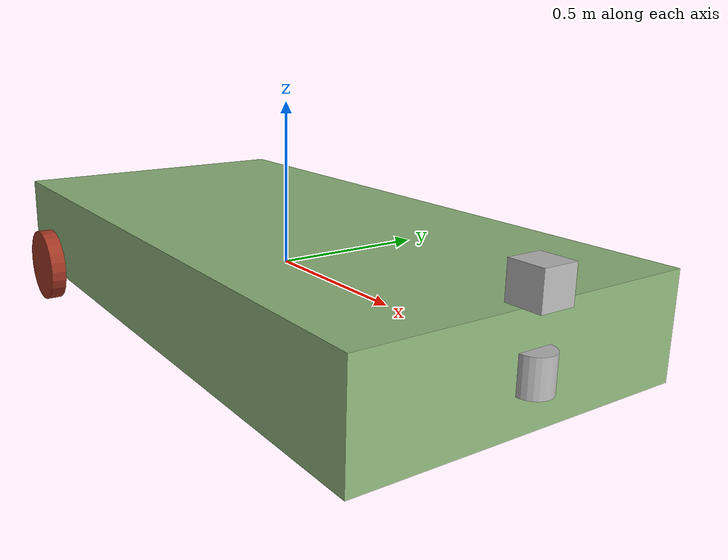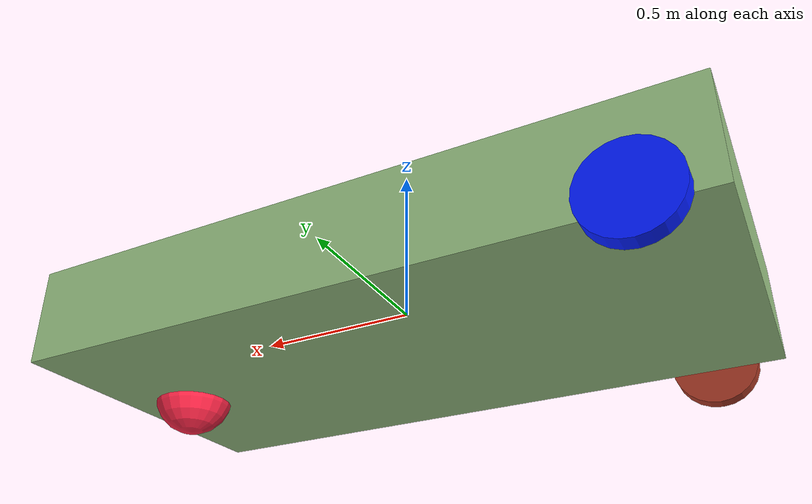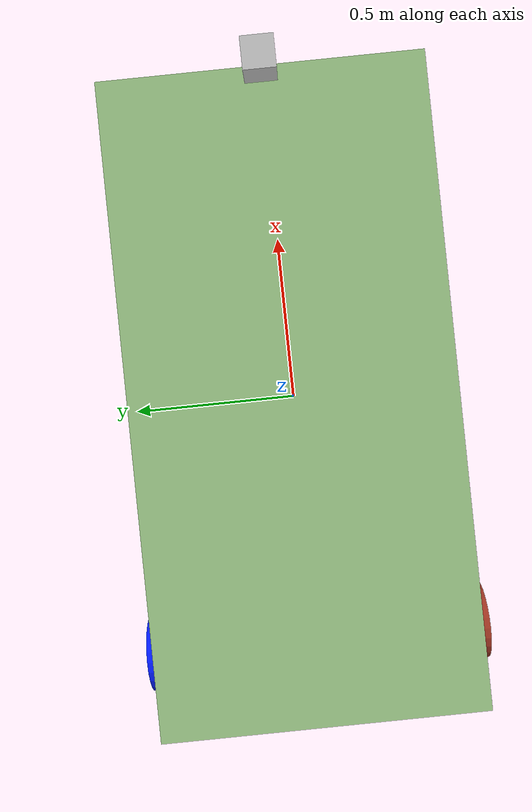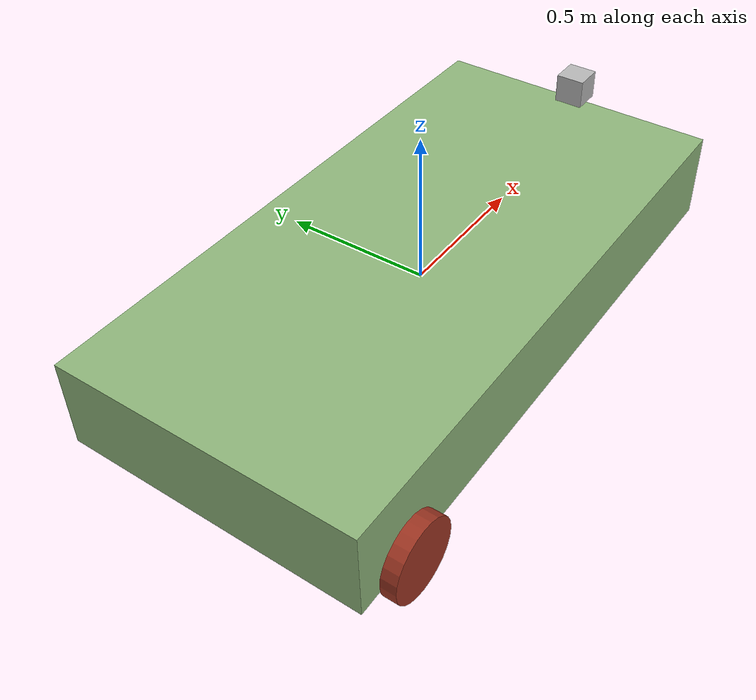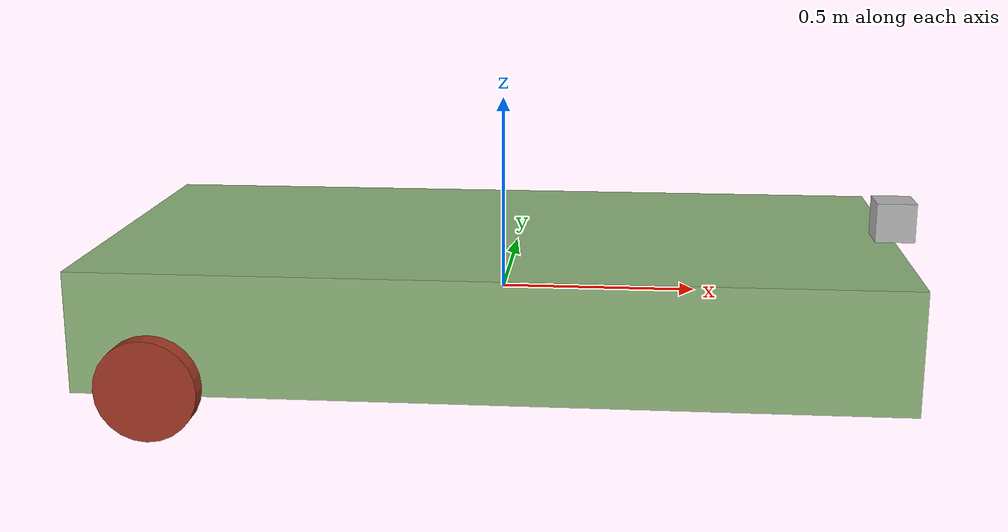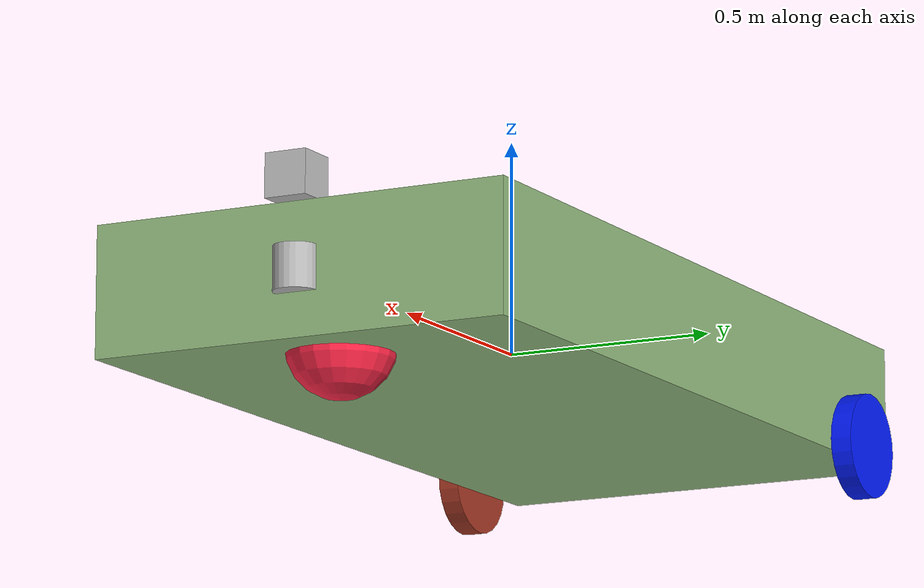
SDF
<?xml version="1.0" ?>
<sdf version="1.6">
  <model name="mobile_base">
    <pose frame="">0 0 0 0 -0 0</pose>
    <static>0</static>
    <self_collide>0</self_collide>
    <allow_auto_disable>0</allow_auto_disable>
    <link name="chassis">
      <kinematic>0</kinematic>
      <gravity>1</gravity>
      <self_collide>0</self_collide>
      <collision name="collision">
        <geometry>
          <box>
            <size>2 1 0.3</size>
          </box>
        </geometry>
        <pose frame="">0 0 0 0 -0 0</pose>
      </collision>
      <visual name="visual">
        <geometry>
          <box>
            <size>2 1 0.3</size>
          </box>
        </geometry>
        <material>
          <ambient>0.560784 0.713725 0.482353 1</ambient>
          <diffuse>0.5607843137254902 0.7137254901960784 0.4823529411764706 1</diffuse>
        </material>
        <pose frame="">0 0 0 0 -0 0</pose>
        <cast_shadows>1</cast_shadows>
        <transparency>0.0</transparency>
      </visual>
      <inertial>
        <inertia>
          <ixx>1.8166666666666667</ixx>
          <iyy>6.8166666666666655</iyy>
          <izz>8.333333333333332</izz>
          <ixy>0.0</ixy>
          <ixz>0.0</ixz>
          <iyz>0.0</iyz>
        </inertia>
        <pose frame="">0 0 0 0 -0 0</pose>
        <mass>20.0</mass>
      </inertial>
      <pose frame="">0 0 0 0 -0 0</pose>
    </link>
    <link name="caster_wheel">
      <kinematic>0</kinematic>
      <gravity>1</gravity>
      <self_collide>0</self_collide>
      <collision name="collision">
        <geometry>
          <sphere>
            <radius>0.125</radius>
          </sphere>
        </geometry>
        <pose frame="">0 0 0 0 -0 0</pose>
        <surface>
          <friction>
            <ode>
              <mu>0.0</mu>
              <mu2>0.0</mu2>
              <fdir1>0 0 0</fdir1>
              <slip1>0.0</slip1>
              <slip2>0.0</slip2>
            </ode>
            <bullet>
              <friction>0.0</friction>
              <friction2>0.0</friction2>
              <rolling_friction>1.0</rolling_friction>
              <fdir1>0 0 0</fdir1>
            </bullet>
          </friction>
        </surface>
      </collision>
      <visual name="visual">
        <geometry>
          <sphere>
            <radius>0.125</radius>
          </sphere>
        </geometry>
        <material>
          <ambient>0.988235 0.14902 0.278431 1</ambient>
          <diffuse>0.9882352941176471 0.14901960784313725 0.2784313725490196 1</diffuse>
        </material>
        <pose frame="">0 0 0 0 -0 0</pose>
        <cast_shadows>1</cast_shadows>
        <transparency>0.0</transparency>
      </visual>
      <inertial>
        <inertia>
          <ixx>0.00625</ixx>
          <iyy>0.00625</iyy>
          <izz>0.00625</izz>
          <ixy>0.0</ixy>
          <ixz>0.0</ixz>
          <iyz>0.0</iyz>
        </inertia>
        <pose frame="">0 0 0 0 -0 0</pose>
        <mass>1.0</mass>
      </inertial>
      <pose frame="">0.8 0 -0.125 0 -0 0</pose>
    </link>
    <link name="left_wheel">
      <kinematic>0</kinematic>
      <gravity>1</gravity>
      <self_collide>0</self_collide>
      <collision name="collision">
        <geometry>
          <cylinder>
            <radius>0.125</radius>
            <length>0.05</length>
          </cylinder>
        </geometry>
        <pose frame="">0 0 0 0 -0 0</pose>
      </collision>
      <visual name="visual">
        <geometry>
          <cylinder>
            <radius>0.125</radius>
            <length>0.05</length>
          </cylinder>
        </geometry>
        <material>
          <ambient>0.00784314 0.105882 0.976471 1</ambient>
          <diffuse>0.00784313725490196 0.10588235294117647 0.9764705882352941 1</diffuse>
        </material>
        <pose frame="">0 0 0 0 -0 0</pose>
        <cast_shadows>1</cast_shadows>
        <transparency>0.0</transparency>
      </visual>
      <inertial>
        <inertia>
          <ixx>0.004114583333333333</ixx>
          <iyy>0.004114583333333333</iyy>
          <izz>0.0078125</izz>
          <ixy>0.0</ixy>
          <ixz>0.0</ixz>
          <iyz>0.0</iyz>
        </inertia>
        <pose frame="">0 0 0 0 -0 0</pose>
        <mass>1.0</mass>
      </inertial>
      <pose frame="">-0.8 0.525 -0.125 5.76279e-13 1.5707 1.5707</pose>
    </link>
    <link name="right_wheel">
      <kinematic>0</kinematic>
      <gravity>1</gravity>
      <self_collide>0</self_collide>
      <collision name="collision">
        <geometry>
          <cylinder>
            <radius>0.125</radius>
            <length>0.05</length>
          </cylinder>
        </geometry>
        <pose frame="">0 0 0 0 -0 0</pose>
      </collision>
      <visual name="visual">
        <geometry>
          <cylinder>
            <radius>0.125</radius>
            <length>0.05</length>
          </cylinder>
        </geometry>
        <material>
          <ambient>0.627451 0.211765 0.137255 1</ambient>
          <diffuse>0.6274509803921569 0.21176470588235294 0.13725490196078433 1</diffuse>
        </material>
        <pose frame="">0 0 0 0 -0 0</pose>
        <cast_shadows>1</cast_shadows>
        <transparency>0.0</transparency>
      </visual>
      <inertial>
        <inertia>
          <ixx>0.004114583333333333</ixx>
          <iyy>0.004114583333333333</iyy>
          <izz>0.0078125</izz>
          <ixy>0.0</ixy>
          <ixz>0.0</ixz>
          <iyz>0.0</iyz>
        </inertia>
        <pose frame="">0 0 0 0 -0 0</pose>
        <mass>1.0</mass>
      </inertial>
      <pose frame="">-0.8 -0.525 -0.125 5.76279e-13 1.5707 1.5707</pose>
    </link>
    <link name="imu_link">
      <kinematic>0</kinematic>
      <gravity>1</gravity>
      <self_collide>0</self_collide>
      <collision name="collision">
        <geometry>
          <box>
            <size>0.1 0.1 0.1</size>
          </box>
        </geometry>
        <pose frame="">0 0 0 0 -0 0</pose>
      </collision>
      <visual name="visual">
        <geometry>
          <box>
            <size>0.1 0.1 0.1</size>
          </box>
        </geometry>
        <pose frame="">0 0 0 0 -0 0</pose>
        <cast_shadows>1</cast_shadows>
        <transparency>0.0</transparency>
      </visual>
      <sensor name="imu" type="imu">
        <always_on>1</always_on>
        <visualize>1</visualize>
        <pose frame="">0 0 0 0 -0 0</pose>
        <topic>/imu</topic>
        <update_rate>50.0</update_rate>
        <plugin name="imu" filename="libgazebo_ros_imu_sensor.so">
          <robotNamespace></robotNamespace>
          <alwaysOn>1</alwaysOn>
          <updateRateHZ>50</updateRateHZ>
          <bodyName>imu_link</bodyName>
          <topicName>/imu</topicName>
          <gaussianNoise>0</gaussianNoise>
          <frameName>world</frameName>
        </plugin>
        <imu>
          <topic>/imu</topic>
          <angular_velocity>
            <x>
              <noise type="none">
                <mean>0.0</mean>
                <stddev>0.0</stddev>
                <bias_mean>0.0</bias_mean>
                <bias_stddev>0.0</bias_stddev>
                <precision>0.0</precision>
              </noise>
            </x>
            <y>
              <noise type="none">
                <mean>0.0</mean>
                <stddev>0.0</stddev>
                <bias_mean>0.0</bias_mean>
                <bias_stddev>0.0</bias_stddev>
                <precision>0.0</precision>
              </noise>
            </y>
            <z>
              <noise type="none">
                <mean>0.0</mean>
                <stddev>0.0</stddev>
                <bias_mean>0.0</bias_mean>
                <bias_stddev>0.0</bias_stddev>
                <precision>0.0</precision>
              </noise>
            </z>
          </angular_velocity>
          <linear_acceleration>
            <x>
              <noise type="none">
                <mean>0.0</mean>
                <stddev>0.0</stddev>
                <bias_mean>0.0</bias_mean>
                <bias_stddev>0.0</bias_stddev>
                <precision>0.0</precision>
              </noise>
            </x>
            <y>
              <noise type="none">
                <mean>0.0</mean>
                <stddev>0.0</stddev>
                <bias_mean>0.0</bias_mean>
                <bias_stddev>0.0</bias_stddev>
                <precision>0.0</precision>
              </noise>
            </y>
            <z>
              <noise type="none">
                <mean>0.0</mean>
                <stddev>0.0</stddev>
                <bias_mean>0.0</bias_mean>
                <bias_stddev>0.0</bias_stddev>
                <precision>0.0</precision>
              </noise>
            </z>
          </linear_acceleration>
        </imu>
      </sensor>
      <inertial>
        <inertia>
          <ixx>1.6666666666666667e-05</ixx>
          <iyy>1.6666666666666667e-05</iyy>
          <izz>1.6666666666666667e-05</izz>
          <ixy>0.0</ixy>
          <ixz>0.0</ixz>
          <iyz>0.0</iyz>
        </inertia>
        <pose frame="">0 0 0 0 -0 0</pose>
        <mass>0.01</mass>
      </inertial>
      <pose frame="">0 0 0 0 -0 0</pose>
    </link>
    <link name="contact_link">
      <kinematic>0</kinematic>
      <gravity>1</gravity>
      <self_collide>0</self_collide>
      <collision name="collision">
        <geometry>
          <cylinder>
            <radius>0.05</radius>
            <length>0.1</length>
          </cylinder>
        </geometry>
        <pose frame="">0 0 0 0 -0 0</pose>
      </collision>
      <visual name="visual">
        <geometry>
          <cylinder>
            <radius>0.05</radius>
            <length>0.1</length>
          </cylinder>
        </geometry>
        <pose frame="">0 0 0 0 -0 0</pose>
        <cast_shadows>1</cast_shadows>
        <transparency>0.0</transparency>
      </visual>
      <sensor name="contact" type="contact">
        <always_on>1</always_on>
        <visualize>0</visualize>
        <pose frame="">1 0 0 0 -0 0</pose>
        <topic>/bumper</topic>
        <update_rate>50.0</update_rate>
        <plugin name="contact" filename="libgazebo_ros_bumper.so">
          <robotNamespace></robotNamespace>
          <frameName>world</frameName>
          <bumperTopicName>/bumper</bumperTopicName>
        </plugin>
        <contact>
          <collision>__default__</collision>
          <topic>/bumper</topic>
          <collision>collision</collision>
        </contact>
      </sensor>
      <inertial>
        <inertia>
          <ixx>1.4583333333333333e-05</ixx>
          <iyy>1.4583333333333333e-05</iyy>
          <izz>1.2500000000000002e-05</izz>
          <ixy>0.0</ixy>
          <ixz>0.0</ixz>
          <iyz>0.0</iyz>
        </inertia>
        <pose frame="">0 0 0 0 -0 0</pose>
        <mass>0.01</mass>
      </inertial>
      <pose frame="">1 0 0 0 -0 0</pose>
    </link>
    <link name="camera_link">
      <kinematic>0</kinematic>
      <gravity>1</gravity>
      <self_collide>0</self_collide>
      <collision name="collision">
        <geometry>
          <box>
            <size>0.1 0.1 0.1</size>
          </box>
        </geometry>
        <pose frame="">0 0 0 0 -0 0</pose>
      </collision>
      <visual name="visual">
        <geometry>
          <box>
            <size>0.1 0.1 0.1</size>
          </box>
        </geometry>
        <pose frame="">0 0 0 0 -0 0</pose>
        <cast_shadows>1</cast_shadows>
        <transparency>0.0</transparency>
      </visual>
      <sensor name="camera" type="camera">
        <always_on>1</always_on>
        <visualize>1</visualize>
        <pose frame="">1 0 0.2 0 -0 0</pose>
        <topic>/camera</topic>
        <update_rate>50.0</update_rate>
        <plugin name="camera" filename="libgazebo_ros_camera.so">
          <robotNamespace></robotNamespace>
          <updateRate>0</updateRate>
          <cameraName>camera</cameraName>
          <imageTopicName>image_raw</imageTopicName>
          <cameraInfoTopicName>camera_info</cameraInfoTopicName>
          <frameName>camera_link</frameName>
          <hackBaseline>0.07</hackBaseline>
          <distortionK1>0</distortionK1>
          <distortionK2>0</distortionK2>
          <distortionK3>0</distortionK3>
          <distortionT1>0</distortionT1>
          <distortionT2>0</distortionT2>
        </plugin>
        <camera name="camera">
          <noise type="none">
            <mean>0.0</mean>
            <stddev>0.0</stddev>
            <bias_mean>0.0</bias_mean>
            <bias_stddev>0.0</bias_stddev>
            <precision>0.0</precision>
          </noise>
          <horizontal_fov>1.047</horizontal_fov>
          <image>
            <height>240.0</height>
            <width>320.0</width>
            <format>R8G8B8</format>
          </image>
          <clip>
            <far>100.0</far>
            <near>0.1</near>
          </clip>
          <save enabled="False">
            <path>__default__</path>
          </save>
          <depth_camera>
            <output>depths</output>
          </depth_camera>
          <distortion>
            <k1>0.0</k1>
            <k2>0.0</k2>
            <k3>0.0</k3>
            <p1>0.0</p1>
            <p2>0.0</p2>
            <center>0.5 0.5</center>
          </distortion>
        </camera>
      </sensor>
      <inertial>
        <inertia>
          <ixx>1.6666666666666667e-05</ixx>
          <iyy>1.6666666666666667e-05</iyy>
          <izz>1.6666666666666667e-05</izz>
          <ixy>0.0</ixy>
          <ixz>0.0</ixz>
          <iyz>0.0</iyz>
        </inertia>
        <pose frame="">0 0 0 0 -0 0</pose>
        <mass>0.01</mass>
      </inertial>
      <pose frame="">1 0 0.2 0 -0 0</pose>
    </link>
    <joint name="caster_wheel_joint" type="fixed">
      <parent>chassis</parent>
      <child>caster_wheel</child>
      <pose frame="">0 0 0 0 -0 0</pose>
    </joint>
    <joint name="left_wheel_joint" type="revolute">
      <parent>chassis</parent>
      <child>left_wheel</child>
      <pose frame="">0 0 0 0 -0 0</pose>
      <axis>
        <xyz>0 0 1</xyz>
        <limit>
          <lower>-1e+16</lower>
          <upper>1e+16</upper>
          <velocity>-1.0</velocity>
          <effort>-1.0</effort>
        </limit>
        <dynamics>
          <spring_reference>0.0</spring_reference>
          <spring_stiffness>0.0</spring_stiffness>
          <damping>0.0</damping>
          <friction>0.0</friction>
        </dynamics>
        <use_parent_model_frame>0</use_parent_model_frame>
      </axis>
    </joint>
    <joint name="right_wheel_joint" type="revolute">
      <parent>chassis</parent>
      <child>right_wheel</child>
      <pose frame="">0 0 0 0 -0 0</pose>
      <axis>
        <xyz>0 0 1</xyz>
        <limit>
          <lower>-1e+16</lower>
          <upper>1e+16</upper>
          <velocity>-1.0</velocity>
          <effort>-1.0</effort>
        </limit>
        <dynamics>
          <spring_reference>0.0</spring_reference>
          <spring_stiffness>0.0</spring_stiffness>
          <damping>0.0</damping>
          <friction>0.0</friction>
        </dynamics>
        <use_parent_model_frame>0</use_parent_model_frame>
      </axis>
    </joint>
    <joint name="imu_joint" type="fixed">
      <parent>chassis</parent>
      <child>imu_link</child>
      <pose frame="">0 0 0 0 -0 0</pose>
    </joint>
    <joint name="contact_joint" type="fixed">
      <parent>chassis</parent>
      <child>contact_link</child>
      <pose frame="">0 0 0 0 -0 0</pose>
    </joint>
    <joint name="camera_joint" type="fixed">
      <parent>chassis</parent>
      <child>camera_link</child>
      <pose frame="">0 0 0 0 -0 0</pose>
    </joint>
  </model>
</sdf>
